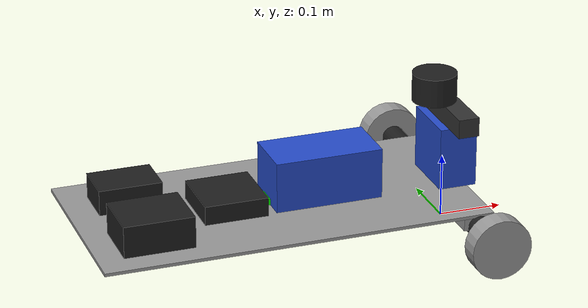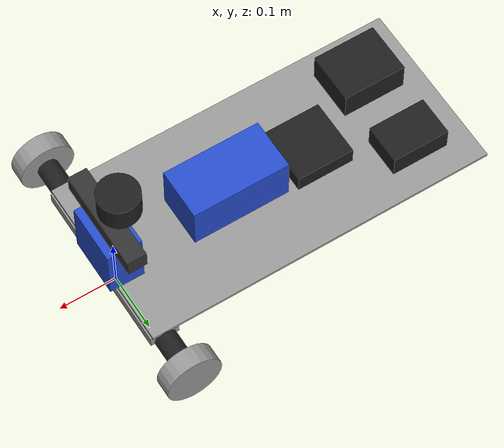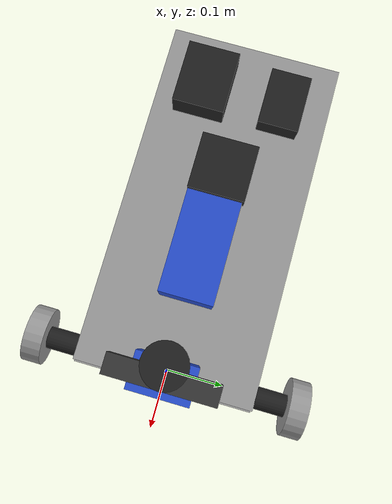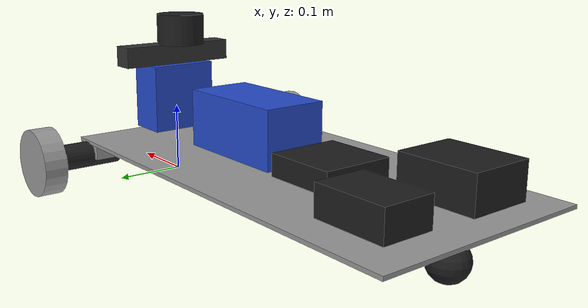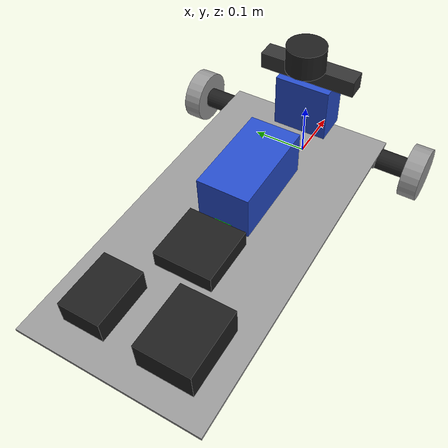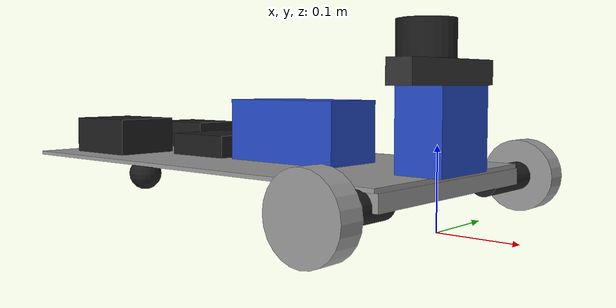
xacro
<?xml version="1.0"?>
<robot xmlns:xacro="http://www.ros.org/wiki/xacro">

    <!-- ROBOT DIMENSIONS -->
    <!-- +X is forward. Drive wheels and ZED camera are at the front (+X).
         the caster trails at the rear (-X). Confirmed on hardware 2026-11-03. -->
    <xacro:property name="base_length" value="0.6096" />      <!-- 24 inches -->
    <xacro:property name="base_width" value="0.3048" />       <!-- 12 inches -->

    <xacro:property name="axle_from_front" value="0.021984" />  <!-- 0.8655 in -->
    <!-- Chassis centre expressed in the new base_link frame. Negative because
         the rover trails its own axle. -->
    <xacro:property name="chassis_x" value="${-(base_length / 2.0 - axle_from_front)}" />
    <xacro:property name="base_thickness" value="0.00508" />   <!-- 0.2 in acrylic plate, measured 2026-11-05 -->
    <xacro:property name="base_clearance" value="0.0635" />    <!-- 2.5 in, ground to plate underside -->
    <!-- Kept as an alias so nothing downstream breaks. It is the TOP surface
         of the deck above the ground, which is what sensors mount to. -->
    <xacro:property name="base_height" value="${base_clearance + base_thickness}" />
    <xacro:property name="base_mass" value="6.8" />           <!-- ~15 lbs -->

    <xacro:property name="wheel_radius" value="0.04741" />    <!-- 3m drive test -->
    <xacro:property name="wheel_length" value="0.03195" />    <!-- 31.95mm width -->
    <xacro:property name="wheel_mass" value="0.5" />          <!-- kg estimate -->
    <!-- Deck underside in base_link coords (base_link z=0 is the axle plane).
         Must come after wheel_radius, as xacro evaluates property values eagerly. -->
    <xacro:property name="deck_z" value="${base_clearance - wheel_radius}" />
    <xacro:property name="caster_radius" value="0.0254" />    <!-- 1 in -->
    <!-- Caster is screwed under the deck 2 in in from the rear edge -->
    <xacro:property name="caster_x" value="${chassis_x - (base_length / 2.0 - 0.0508)}" />

    <xacro:property name="deck_top" value="${deck_z + base_thickness}" />
    <!-- LIDAR puck centre is 1.5 in back from the front edge -->
    <xacro:property name="lidar_x" value="${chassis_x + base_length / 2.0 - 0.0381}" />
    <!-- Scan plane is 6 in above the deck, and this is the LIDAR's frame
         origin -
         ranges are measured from here, so it must be the scan slot, not the
         top of the housing. -->
    <xacro:property name="lidar_z" value="${deck_top + 0.1524}" />
    <xacro:property name="lidar_housing_length" value="0.045" />
    <!-- Camera body is 33mm deep, so its centre sits half that back from the
         front edge to leave the front face flush. -->
    <xacro:property name="camera_depth" value="0.033" />
    <xacro:property name="camera_height" value="0.030" />
    <xacro:property name="camera_x" value="${chassis_x + base_length / 2.0 - camera_depth / 2.0}" />
    <!-- 1mm clearance between the camera top and the LIDAR housing underside -->
    <xacro:property name="camera_z" value="${lidar_z - lidar_housing_length / 2.0 - 0.001 - camera_height / 2.0}" />
    <!-- The printed mould fills the gap from the deck up to the camera -->
    <xacro:property name="mount_height" value="${camera_z - camera_height / 2.0 - deck_top}" />
    <xacro:property name="wheel_separation" value="0.44" />

    <!-- Wheel X position - near front edge of chassis -->
    <!-- Zero by definition now - base_link IS the axle midpoint. Kept as a
         named property so the wheel, rail and motor joints below still read
         as "at the axle" rather than as a bare 0. -->
    <xacro:property name="wheel_x_offset" value="0" />

    <xacro:property name="rail_thickness" value="0.02" />
    <xacro:property name="rail_long_length" value="0.45" />
    <xacro:property name="rail_long_width" value="0.05" />
    <xacro:property name="rail_cross_length" value="0.30" />
    <xacro:property name="rail_cross_width" value="0.05" />
    <xacro:property name="motor_diameter" value="0.037" />
    <xacro:property name="motor_length" value="0.095" />
    <!-- Motor sits just inboard of the wheel, so its outer face meets the tyre's
         inner face, so the body reaches back under the chassis. -->
    <xacro:property name="motor_y" value="${wheel_separation / 2.0 - wheel_length / 2.0 - motor_length / 2.0}" />
    <!-- Rails bolt to the deck underside and hang down from it -->
    <xacro:property name="rail_z" value="${deck_z - rail_thickness / 2.0}" />

    <!-- BASE FOOTPRINT -->
    <link name="base_footprint" />

    <!-- BASE LINK -->
    <link name="base_link">
        <!-- Acrylic deck, a thin plate sitting base_clearance off the ground -->
        <visual>
            <geometry>
                <box size="${base_length} ${base_width} ${base_thickness}" />
            </geometry>
            <origin xyz="${chassis_x} 0 ${deck_z + base_thickness / 2.0}" rpy="0 0 0" />
            <material name="grey" />
        </visual>
        <collision>
            <geometry>
                <box size="${base_length} ${base_width} ${base_thickness}" />
            </geometry>
            <origin xyz="${chassis_x} 0 ${deck_z + base_thickness / 2.0}" rpy="0 0 0" />
        </collision>

        <!-- T-rail long arm, down the centreline, running back from the
             transverse rail at the front -->
        <visual>
            <geometry>
                <box size="${rail_long_length} ${rail_long_width} ${rail_thickness}" />
            </geometry>
            <origin xyz="${wheel_x_offset - rail_long_length / 2.0} 0 ${rail_z}" rpy="0 0 0" />
            <material name="grey" />
        </visual>
        <collision>
            <geometry>
                <box size="${rail_long_length} ${rail_long_width} ${rail_thickness}" />
            </geometry>
            <origin xyz="${wheel_x_offset - rail_long_length / 2.0} 0 ${rail_z}" rpy="0 0 0" />
        </collision>

        <!-- T-rail transverse arm at the front, carrying both motors -->
        <visual>
            <geometry>
                <box size="${rail_cross_width} ${rail_cross_length} ${rail_thickness}" />
            </geometry>
            <origin xyz="${wheel_x_offset} 0 ${rail_z}" rpy="0 0 0" />
            <material name="grey" />
        </visual>
        <collision>
            <geometry>
                <box size="${rail_cross_width} ${rail_cross_length} ${rail_thickness}" />
            </geometry>
            <origin xyz="${wheel_x_offset} 0 ${rail_z}" rpy="0 0 0" />
        </collision>

        <!-- Left drive motor, protruding outboard of the chassis -->
        <visual>
            <geometry>
                <cylinder radius="${motor_diameter / 2.0}" length="${motor_length}" />
            </geometry>
            <origin xyz="${wheel_x_offset} ${motor_y} 0" rpy="${pi / 2.0} 0 0" />
            <material name="black" />
        </visual>
        <collision>
            <geometry>
                <cylinder radius="${motor_diameter / 2.0}" length="${motor_length}" />
            </geometry>
            <origin xyz="${wheel_x_offset} ${motor_y} 0" rpy="${pi / 2.0} 0 0" />
        </collision>

        <!-- Right drive motor -->
        <visual>
            <geometry>
                <cylinder radius="${motor_diameter / 2.0}" length="${motor_length}" />
            </geometry>
            <origin xyz="${wheel_x_offset} ${-motor_y} 0" rpy="${pi / 2.0} 0 0" />
            <material name="black" />
        </visual>
        <collision>
            <geometry>
                <cylinder radius="${motor_diameter / 2.0}" length="${motor_length}" />
            </geometry>
            <origin xyz="${wheel_x_offset} ${-motor_y} 0" rpy="${pi / 2.0} 0 0" />
        </collision>

        <!-- Jetson Orin, rear right (-X, -Y) -->
        <visual>
            <geometry>
                <box size="0.11 0.09 0.05" />
            </geometry>
            <origin xyz="${chassis_x - 0.21} -0.07 ${deck_top + 0.025}" rpy="0 0 0" />
            <material name="black" />
        </visual>
        <!-- DC-DC converter, immediately to the left of the Jetson (+Y) -->
        <visual>
            <geometry>
                <box size="0.10 0.07 0.04" />
            </geometry>
            <origin xyz="${chassis_x - 0.21} 0.07 ${deck_top + 0.020}" rpy="0 0 0" />
            <material name="black" />
        </visual>
        <!-- RoboClaw 2x60A, forward of the Jetson/converter pair -->
        <visual>
            <geometry>
                <box size="0.10 0.10 0.03" />
            </geometry>
            <origin xyz="${chassis_x - 0.07} 0 ${deck_top + 0.015}" rpy="0 0 0" />
            <material name="black" />
        </visual>
        <!-- 12V battery in its printed mould, forward of the RoboClaw -->
        <visual>
            <geometry>
                <box size="0.17 0.09 0.08" />
            </geometry>
            <origin xyz="${chassis_x + 0.08} 0 ${deck_top + 0.040}" rpy="0 0 0" />
            <material name="blue" />
        </visual>
        <!-- Printed mould carrying the ZED2i, at the front edge. Its height is
             derived so the camera lands at camera_z. -->
        <visual>
            <geometry>
                <box size="0.06 0.10 ${mount_height}" />
            </geometry>
            <origin xyz="${camera_x} 0 ${deck_top + mount_height / 2.0}" rpy="0 0 0" />
            <material name="blue" />
        </visual>

        <inertial>
            <mass value="${base_mass}" />
            <origin xyz="${chassis_x} 0 ${deck_top + base_height / 2.0}" rpy="0 0 0" />
            <inertia ixx="${(1/12) * base_mass * (base_width*base_width + base_height*base_height)}"
                     ixy="0" ixz="0"
                     iyy="${(1/12) * base_mass * (base_length*base_length + base_height*base_height)}"
                     iyz="0"
                     izz="${(1/12) * base_mass * (base_length*base_length + base_width*base_width)}" />
        </inertial>
    </link>

    <!-- WHEEL MACRO -->
    <xacro:macro name="wheel_link" params="prefix">
        <link name="${prefix}_wheel_link">
            <visual>
                <geometry>
                    <cylinder radius="${wheel_radius}" length="${wheel_length}" />
                </geometry>
                <origin xyz="0 0 0" rpy="${pi / 2.0} 0 0" />
                <material name="grey" />
            </visual>
            <collision>
                <geometry>
                    <cylinder radius="${wheel_radius}" length="${wheel_length}" />
                </geometry>
                <origin xyz="0 0 0" rpy="${pi / 2.0} 0 0" />
            </collision>
            <inertial>
                <mass value="${wheel_mass}" />
                <origin xyz="0 0 0" rpy="${pi / 2.0} 0 0" />
                <inertia ixx="${(1/12) * wheel_mass * (3*wheel_radius*wheel_radius + wheel_length*wheel_length)}"
                         ixy="0" ixz="0"
                         iyy="${(1/12) * wheel_mass * (3*wheel_radius*wheel_radius + wheel_length*wheel_length)}"
                         iyz="0"
                         izz="${(1/2) * wheel_mass * wheel_radius*wheel_radius}" />
            </inertial>
        </link>
    </xacro:macro>

    <xacro:wheel_link prefix="right" />
    <xacro:wheel_link prefix="left" />

    <!-- CASTER WHEEL -->
    <link name="caster_wheel_link">
        <visual>
            <geometry>
                <sphere radius="${caster_radius}" />
            </geometry>
            <origin xyz="0 0 0" rpy="0 0 0" />
            <material name="black" />
        </visual>
        <collision>
            <geometry>
                <sphere radius="${caster_radius}" />
            </geometry>
            <origin xyz="0 0 0" rpy="0 0 0" />
        </collision>
        <inertial>
            <mass value="0.2" />
            <origin xyz="0 0 0" rpy="0 0 0" />
            <inertia ixx="0.0001" ixy="0" ixz="0" iyy="0.0001" iyz="0" izz="0.0001" />
        </inertial>
    </link>

    <!-- IMU LINK -->
    <link name="imu_link">
        <visual>
            <geometry>
                <box size="0.03 0.03 0.01" />
            </geometry>
            <origin xyz="0 0 0" rpy="0 0 0" />
            <material name="green">
                <color rgba="0 1 0 1" />
            </material>
        </visual>
        <collision>
            <geometry>
                <box size="0.03 0.03 0.01" />
            </geometry>
        </collision>
        <inertial>
            <mass value="0.01" />
            <inertia ixx="0.000001" ixy="0" ixz="0" iyy="0.000001" iyz="0" izz="0.000001" />
        </inertial>
    </link>

    <!-- ZED2i CAMERA LINK -->
    <!-- Named 'zed_camera_link' to match the ZED wrapper's TF frame,
         connecting the robot URDF tree to the ZED's internal frame chain -->
    <link name="zed_camera_link">
        <visual>
            <geometry>
                <box size="0.033 0.175 0.030" />
            </geometry>
            <origin xyz="0 0 0" rpy="0 0 0" />
            <material name="dark_grey">
                <color rgba="0.2 0.2 0.2 1" />
            </material>
        </visual>
        <collision>
            <geometry>
                <box size="0.033 0.175 0.030" />
            </geometry>
        </collision>
        <inertial>
            <mass value="0.175" />
            <inertia ixx="0.000001" ixy="0" ixz="0" iyy="0.000001" iyz="0" izz="0.000001" />
        </inertial>
    </link>

    <!-- JOINTS -->
    <joint name="base_joint" type="fixed">
        <parent link="base_footprint" />
        <child link="base_link" />
        <origin xyz="0 0 ${wheel_radius}" rpy="0 0 0"/>
    </joint>

    <!-- Drive wheels, at the front (+X) -->
    <joint name="base_right_wheel_joint" type="continuous">
        <parent link="base_link" />
        <child link="right_wheel_link" />
        <origin xyz="${wheel_x_offset} ${-wheel_separation / 2.0} 0" rpy="0 0 0" />
        <axis xyz="0 1 0" />
    </joint>

    <joint name="base_left_wheel_joint" type="continuous">
        <parent link="base_link" />
        <child link="left_wheel_link" />
        <origin xyz="${wheel_x_offset} ${wheel_separation / 2.0} 0" rpy="0 0 0" />
        <axis xyz="0 1 0" />
    </joint>

    <!-- Caster, trailing at the rear (-X), 2 in in from the rear edge.
         z puts the sphere's underside exactly on the ground plane. -->
    <joint name="base_caster_wheel_joint" type="fixed">
        <parent link="base_link" />
        <child link="caster_wheel_link" />
        <origin xyz="${caster_x} 0 ${caster_radius - wheel_radius}" rpy="0 0 0" />
    </joint>

    <!-- IMU centered on top of chassis not quite right, doesn't really matter, can add meshes later -->

    <!-- LIDAR LINK (LD19) -->
    <link name="laser_frame">
        <visual>
            <geometry>
                <cylinder radius="0.035" length="0.045" />
            </geometry>
            <origin xyz="0 0 0" rpy="0 0 0" />
            <material name="black" />
        </visual>
        <collision>
            <geometry>
                <cylinder radius="0.035" length="0.045" />
            </geometry>
            <origin xyz="0 0 0" rpy="0 0 0" />
        </collision>
        <inertial>
            <mass value="0.2" />
            <origin xyz="0 0 0" rpy="0 0 0" />
            <inertia ixx="0.0001" ixy="0" ixz="0" iyy="0.0001" iyz="0" izz="0.0001" />
        </inertial>
    </link>

    <joint name="imu_joint" type="fixed">
        <parent link="base_link" />
        <child link="imu_link" />
        <origin xyz="${chassis_x} 0 ${deck_z + base_thickness + 0.005}" rpy="0 0 0" />
    </joint>

    <!-- ZED camera at the front edge, on top of the chassis, facing forward (+X) -->
    <joint name="camera_joint" type="fixed">
        <parent link="base_link" />
        <child link="zed_camera_link" />
        <origin xyz="${camera_x} 0 ${camera_z}" rpy="0 0 0" />
    </joint>

    <joint name="lidar_joint" type="fixed">
        <parent link="base_link" />
        <child link="laser_frame" />
        <origin xyz="${lidar_x} 0 ${lidar_z}" rpy="0 0 ${-pi / 2.0}" />
    </joint>

</robot>
